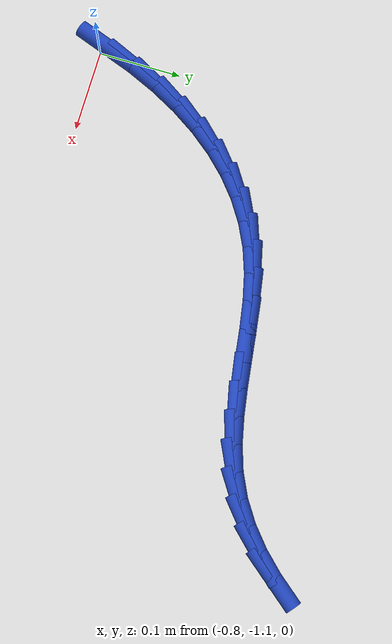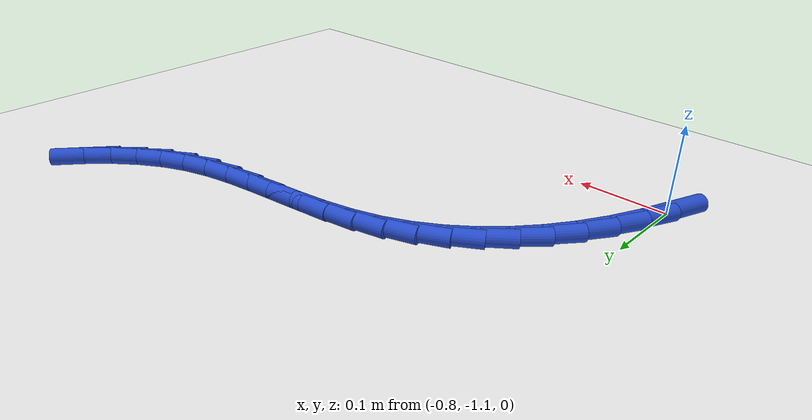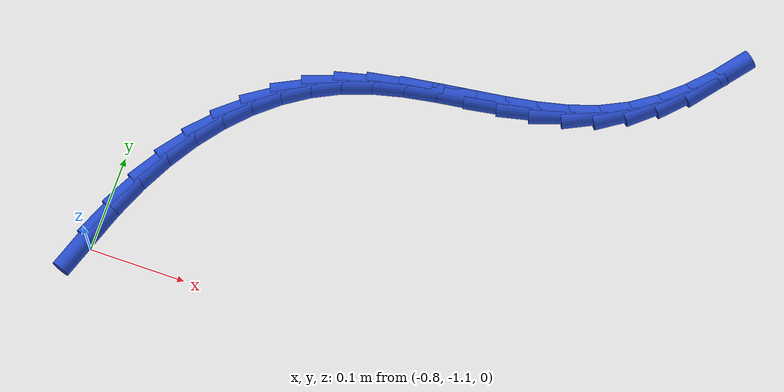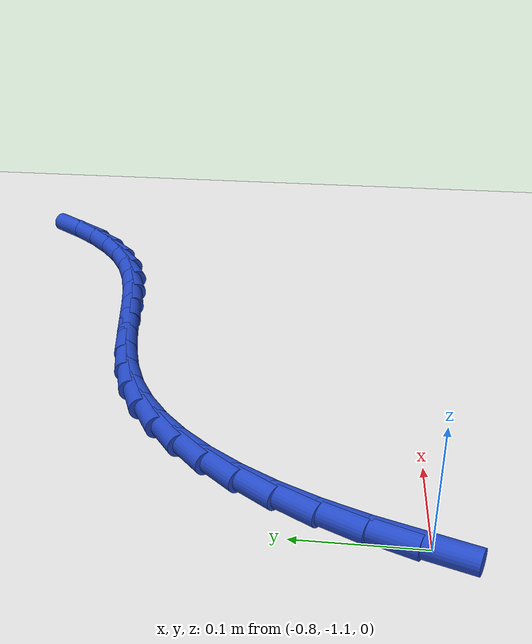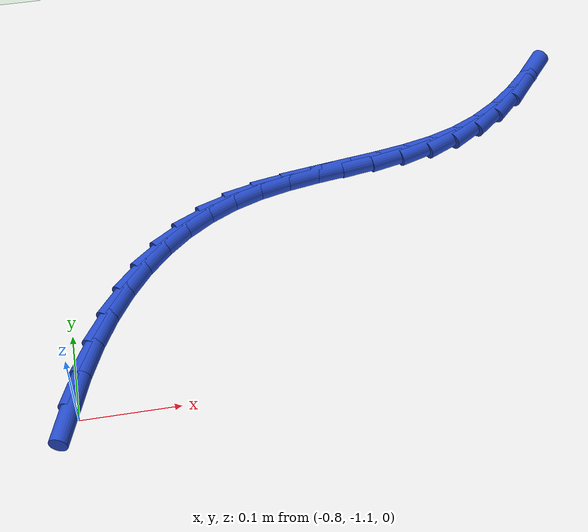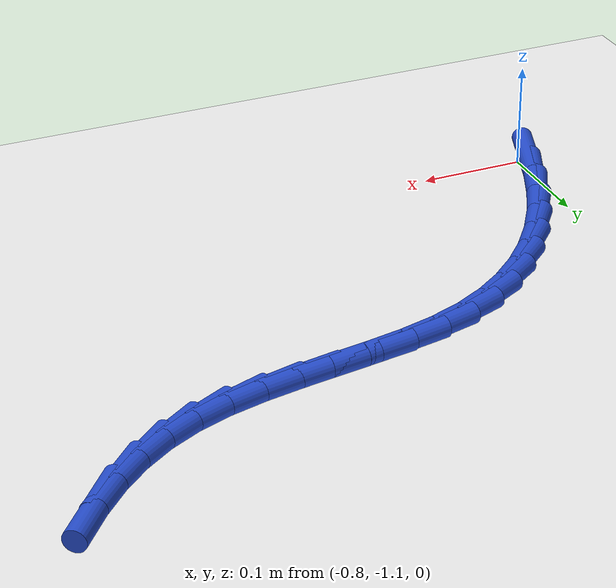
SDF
<sdf version="1.6">
 <world name="default">
  <model name="ground_plane">
   <static>1</static>
   <link name="link">
    <collision name="collision">
     <geometry><plane><normal>0 0 1</normal><size>100 100</size></plane></geometry>
     <surface><friction><ode><mu>100</mu><mu2>50</mu2></ode></friction></surface>
    </collision>
    <visual name="visual">
     <cast_shadows>0</cast_shadows>
     <geometry><plane><normal>0 0 1</normal><size>100 100</size></plane></geometry>
     <material>
      <script><uri>file://media/materials/scripts/gazebo.material</uri><name>Gazebo/WhiteGlow</name></script>
     </material>
    </visual>
   </link>
  </model>
  <model name="line">
   <link name="link_216">
    <pose>-0.8071187639441715 -1.0932427856371636 0.01 0 1.57 1.2235538405246924</pose>
    <collision name="collision">
     <geometry><cylinder><radius>0.01</radius><length>0.08</length></cylinder></geometry>
    </collision>
    <visual name="visual">
     <material>
      <script><name>Gazebo/Blue</name><uri>file://media/materials/scripts/gazebo.material</uri></script>
     </material>
     <geometry><cylinder><radius>0.01</radius><length>0.08</length></cylinder></geometry>
    </visual>
   </link>
   <link name="link_217">
    <pose>-0.7934727014787192 -1.0555367611186541 0.01 0 1.57 1.1561130029891427</pose>
    <collision name="collision">
     <geometry><cylinder><radius>0.01</radius><length>0.08</length></cylinder></geometry>
    </collision>
    <visual name="visual">
     <material>
      <script><name>Gazebo/Blue</name><uri>file://media/materials/scripts/gazebo.material</uri></script>
     </material>
     <geometry><cylinder><radius>0.01</radius><length>0.08</length></cylinder></geometry>
    </visual>
   </link>
   <link name="link_218">
    <pose>-0.778029969351473 -1.0204564354516297 0.01 0 1.57 1.0808683493033704</pose>
    <collision name="collision">
     <geometry><cylinder><radius>0.01</radius><length>0.08</length></cylinder></geometry>
    </collision>
    <visual name="visual">
     <material>
      <script><name>Gazebo/Blue</name><uri>file://media/materials/scripts/gazebo.material</uri></script>
     </material>
     <geometry><cylinder><radius>0.01</radius><length>0.08</length></cylinder></geometry>
    </visual>
   </link>
   <link name="link_219">
    <pose>-0.760773057248807 -0.9880974381091492 0.01 0 1.57 0.997157531222775</pose>
    <collision name="collision">
     <geometry><cylinder><radius>0.01</radius><length>0.08</length></cylinder></geometry>
    </collision>
    <visual name="visual">
     <material>
      <script><name>Gazebo/Blue</name><uri>file://media/materials/scripts/gazebo.material</uri></script>
     </material>
     <geometry><cylinder><radius>0.01</radius><length>0.08</length></cylinder></geometry>
    </visual>
   </link>
   <link name="link_220">
    <pose>-0.7416848411477489 -0.9585543448723336 0.01 0 1.57 0.9045713182372408</pose>
    <collision name="collision">
     <geometry><cylinder><radius>0.01</radius><length>0.08</length></cylinder></geometry>
    </collision>
    <visual name="visual">
     <material>
      <script><name>Gazebo/Blue</name><uri>file://media/materials/scripts/gazebo.material</uri></script>
     </material>
     <geometry><cylinder><radius>0.01</radius><length>0.08</length></cylinder></geometry>
    </visual>
   </link>
   <link name="link_221">
    <pose>-0.7207481970253284 -0.9319217315223063 0.01 0 1.57 0.8031728557796642</pose>
    <collision name="collision">
     <geometry><cylinder><radius>0.01</radius><length>0.08</length></cylinder></geometry>
    </collision>
    <visual name="visual">
     <material>
      <script><name>Gazebo/Blue</name><uri>file://media/materials/scripts/gazebo.material</uri></script>
     </material>
     <geometry><cylinder><radius>0.01</radius><length>0.08</length></cylinder></geometry>
    </visual>
   </link>
   <link name="link_222">
    <pose>-0.6979460008585732 -0.9082941738401875 0.01 0 1.57 0.6937141292581726</pose>
    <collision name="collision">
     <geometry><cylinder><radius>0.01</radius><length>0.08</length></cylinder></geometry>
    </collision>
    <visual name="visual">
     <material>
      <script><name>Gazebo/Blue</name><uri>file://media/materials/scripts/gazebo.material</uri></script>
     </material>
     <geometry><cylinder><radius>0.01</radius><length>0.08</length></cylinder></geometry>
    </visual>
   </link>
   <link name="link_223">
    <pose>-0.6732611286245113 -0.8877662476070983 0.01 0 1.57 0.5777934425624369</pose>
    <collision name="collision">
     <geometry><cylinder><radius>0.01</radius><length>0.08</length></cylinder></geometry>
    </collision>
    <visual name="visual">
     <material>
      <script><name>Gazebo/Blue</name><uri>file://media/materials/scripts/gazebo.material</uri></script>
     </material>
     <geometry><cylinder><radius>0.01</radius><length>0.08</length></cylinder></geometry>
    </visual>
   </link>
   <link name="link_224">
    <pose>-0.6466764563001712 -0.8704325286041604 0.01 0 1.57 0.45785266616332476</pose>
    <collision name="collision">
     <geometry><cylinder><radius>0.01</radius><length>0.08</length></cylinder></geometry>
    </collision>
    <visual name="visual">
     <material>
      <script><name>Gazebo/Blue</name><uri>file://media/materials/scripts/gazebo.material</uri></script>
     </material>
     <geometry><cylinder><radius>0.01</radius><length>0.08</length></cylinder></geometry>
    </visual>
   </link>
   <link name="link_225">
    <pose>-0.618174859862581 -0.8563875926124952 0.01 0 1.57 0.3375391983035674</pose>
    <collision name="collision">
     <geometry><cylinder><radius>0.01</radius><length>0.08</length></cylinder></geometry>
    </collision>
    <visual name="visual">
     <material>
      <script><name>Gazebo/Blue</name><uri>file://media/materials/scripts/gazebo.material</uri></script>
     </material>
     <geometry><cylinder><radius>0.01</radius><length>0.08</length></cylinder></geometry>
    </visual>
   </link>
   <link name="link_226">
    <pose>-0.5877484695261268 -0.845708825381621 0.01 0 1.57 0.23595162483106522</pose>
    <collision name="collision">
     <geometry><cylinder><radius>0.01</radius><length>0.08</length></cylinder></geometry>
    </collision>
    <visual name="visual">
     <material>
      <script><name>Gazebo/Blue</name><uri>file://media/materials/scripts/gazebo.material</uri></script>
     </material>
     <geometry><cylinder><radius>0.01</radius><length>0.08</length></cylinder></geometry>
    </visual>
   </link>
   <link name="link_227">
    <pose>-0.5556491334710078 -0.8379911785211295 0.01 0 1.57 0.1698115229185544</pose>
    <collision name="collision">
     <geometry><cylinder><radius>0.01</radius><length>0.08</length></cylinder></geometry>
    </collision>
    <visual name="visual">
     <material>
      <script><name>Gazebo/Blue</name><uri>file://media/materials/scripts/gazebo.material</uri></script>
     </material>
     <geometry><cylinder><radius>0.01</radius><length>0.08</length></cylinder></geometry>
    </visual>
   </link>
   <link name="link_228">
    <pose>-0.5224174797052649 -0.8322931861947264 0.01 0 1.57 0.136619740210188</pose>
    <collision name="collision">
     <geometry><cylinder><radius>0.01</radius><length>0.08</length></cylinder></geometry>
    </collision>
    <visual name="visual">
     <material>
      <script><name>Gazebo/Blue</name><uri>file://media/materials/scripts/gazebo.material</uri></script>
     </material>
     <geometry><cylinder><radius>0.01</radius><length>0.08</length></cylinder></geometry>
    </visual>
   </link>
   <link name="link_229">
    <pose>-0.48860922335342355 -0.8276453577814524 0.01 0 1.57 0.1341951353191118</pose>
    <collision name="collision">
     <geometry><cylinder><radius>0.01</radius><length>0.08</length></cylinder></geometry>
    </collision>
    <visual name="visual">
     <material>
      <script><name>Gazebo/Blue</name><uri>file://media/materials/scripts/gazebo.material</uri></script>
     </material>
     <geometry><cylinder><radius>0.01</radius><length>0.08</length></cylinder></geometry>
    </visual>
   </link>
   <link name="link_230">
    <pose>-0.45478007954001165 -0.8230782026603485 0.01 0 1.57 0.16242732966450668</pose>
    <collision name="collision">
     <geometry><cylinder><radius>0.01</radius><length>0.08</length></cylinder></geometry>
    </collision>
    <visual name="visual">
     <material>
      <script><name>Gazebo/Blue</name><uri>file://media/materials/scripts/gazebo.material</uri></script>
     </material>
     <geometry><cylinder><radius>0.01</radius><length>0.08</length></cylinder></geometry>
    </visual>
   </link>
   <link name="link_231">
    <pose>-0.4214857633895542 -0.8176222302104545 0.01 0 1.57 0.22333607714693834</pose>
    <collision name="collision">
     <geometry><cylinder><radius>0.01</radius><length>0.08</length></cylinder></geometry>
    </collision>
    <visual name="visual">
     <material>
      <script><name>Gazebo/Blue</name><uri>file://media/materials/scripts/gazebo.material</uri></script>
     </material>
     <geometry><cylinder><radius>0.01</radius><length>0.08</length></cylinder></geometry>
    </visual>
   </link>
   <link name="link_232">
    <pose>-0.3892819900265779 -0.8103079498108119 0.01 0 1.57 0.32046116727030727</pose>
    <collision name="collision">
     <geometry><cylinder><radius>0.01</radius><length>0.08</length></cylinder></geometry>
    </collision>
    <visual name="visual">
     <material>
      <script><name>Gazebo/Blue</name><uri>file://media/materials/scripts/gazebo.material</uri></script>
     </material>
     <geometry><cylinder><radius>0.01</radius><length>0.08</length></cylinder></geometry>
    </visual>
   </link>
   <link name="link_233">
    <pose>-0.35872447457560835 -0.8001658708404605 0.01 0 1.57 0.4516629784727853</pose>
    <collision name="collision">
     <geometry><cylinder><radius>0.01</radius><length>0.08</length></cylinder></geometry>
    </collision>
    <visual name="visual">
     <material>
      <script><name>Gazebo/Blue</name><uri>file://media/materials/scripts/gazebo.material</uri></script>
     </material>
     <geometry><cylinder><radius>0.01</radius><length>0.08</length></cylinder></geometry>
    </visual>
   </link>
   <link name="link_234">
    <pose>-0.3302907852426068 -0.7863724681261683 0.01 0 1.57 0.5842178316505167</pose>
    <collision name="collision">
     <geometry><cylinder><radius>0.01</radius><length>0.08</length></cylinder></geometry>
    </collision>
    <visual name="visual">
     <material>
      <script><name>Gazebo/Blue</name><uri>file://media/materials/scripts/gazebo.material</uri></script>
     </material>
     <geometry><cylinder><radius>0.01</radius><length>0.08</length></cylinder></geometry>
    </visual>
   </link>
   <link name="link_235">
    <pose>-0.3039889105245914 -0.7689813132979781 0.01 0 1.57 0.7026568331772256</pose>
    <collision name="collision">
     <geometry><cylinder><radius>0.01</radius><length>0.08</length></cylinder></geometry>
    </collision>
    <visual name="visual">
     <material>
      <script><name>Gazebo/Blue</name><uri>file://media/materials/scripts/gazebo.material</uri></script>
     </material>
     <geometry><cylinder><radius>0.01</radius><length>0.08</length></cylinder></geometry>
    </visual>
   </link>
   <link name="link_236">
    <pose>-0.2796522620306162 -0.7483720585797948 0.01 0 1.57 0.8051595752530489</pose>
    <collision name="collision">
     <geometry><cylinder><radius>0.01</radius><length>0.08</length></cylinder></geometry>
    </collision>
    <visual name="visual">
     <material>
      <script><name>Gazebo/Blue</name><uri>file://media/materials/scripts/gazebo.material</uri></script>
     </material>
     <geometry><cylinder><radius>0.01</radius><length>0.08</length></cylinder></geometry>
    </visual>
   </link>
   <link name="link_237">
    <pose>-0.25711395993142916 -0.7249249005538194 0.01 0 1.57 0.8917640127772953</pose>
    <collision name="collision">
     <geometry><cylinder><radius>0.01</radius><length>0.08</length></cylinder></geometry>
    </collision>
    <visual name="visual">
     <material>
      <script><name>Gazebo/Blue</name><uri>file://media/materials/scripts/gazebo.material</uri></script>
     </material>
     <geometry><cylinder><radius>0.01</radius><length>0.08</length></cylinder></geometry>
    </visual>
   </link>
  </model>
 </world>
</sdf>
